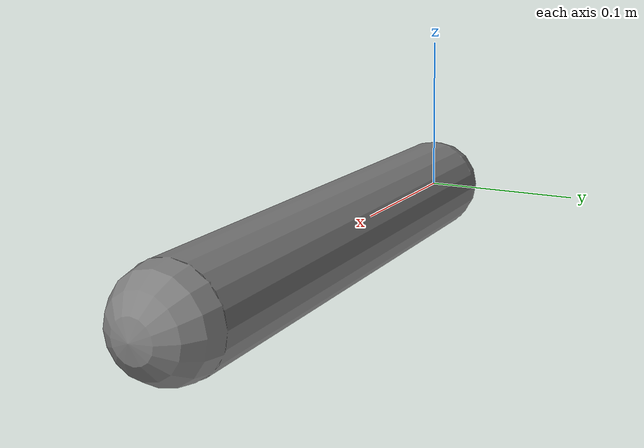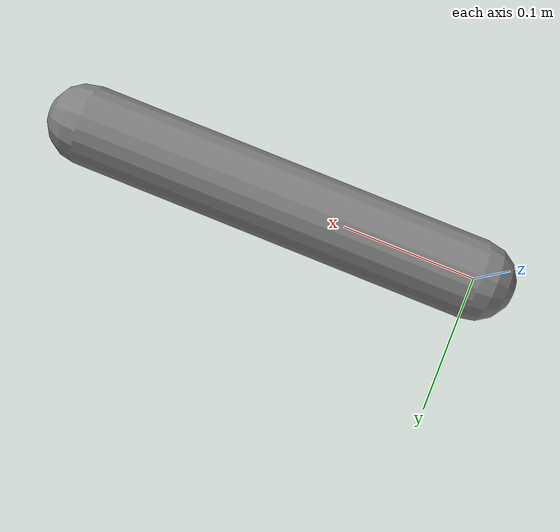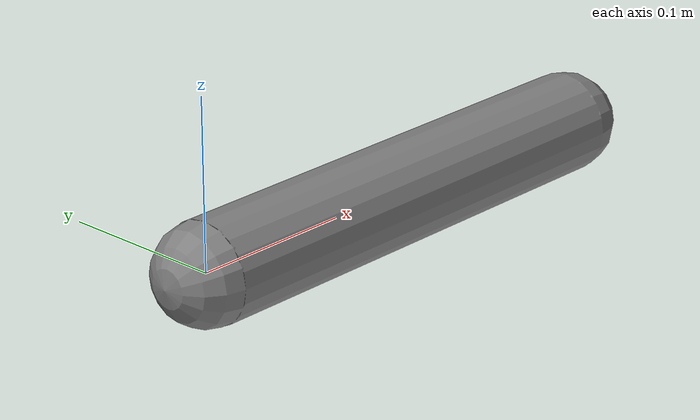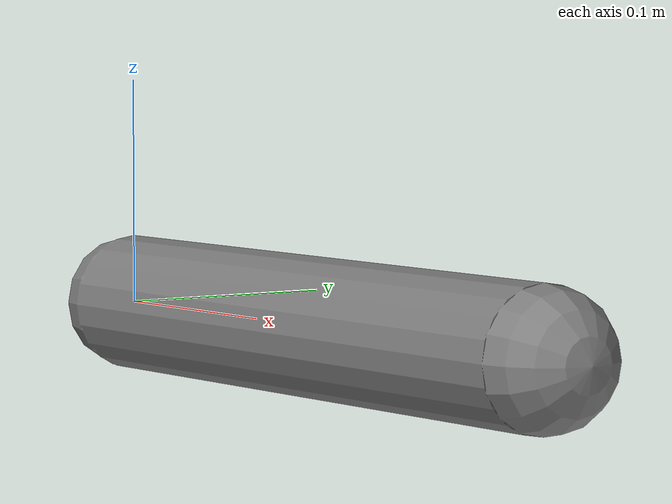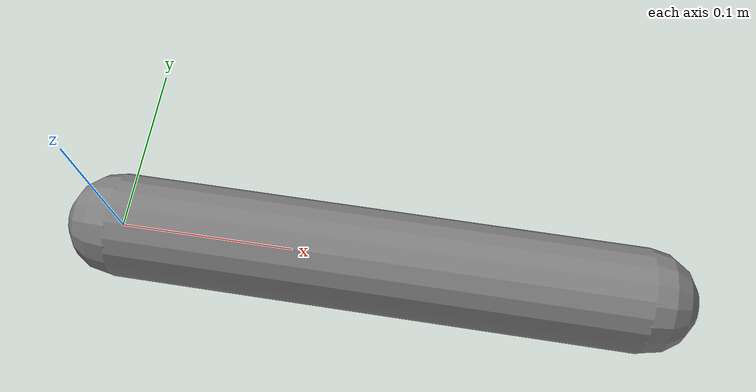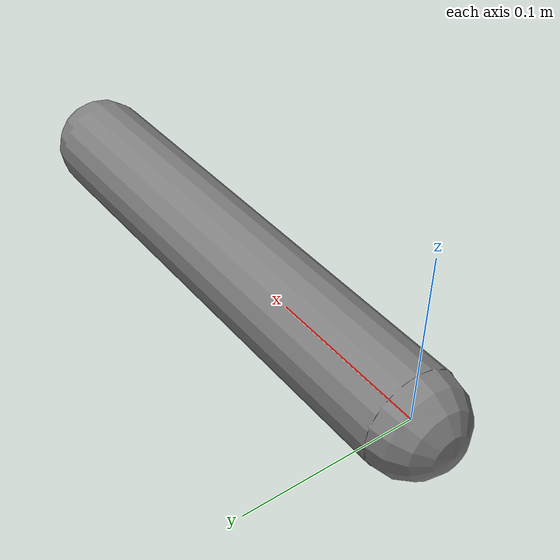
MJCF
<mujoco>
          <option timestep="0.01"/>
          <worldbody>
            <body name="b">
              <joint name="j" type="hinge" axis="0 1 0"/>
              <geom type="capsule" fromto="0 0 0 0.3 0 0" size="0.03" mass="1"/>
            </body>
          </worldbody>
          <actuator>
            <general joint="j" gaintype="affine" gainprm="1 2 0" ctrlrange="-1 1"/>
            <motor joint="j"/>
          </actuator>
        </mujoco>
